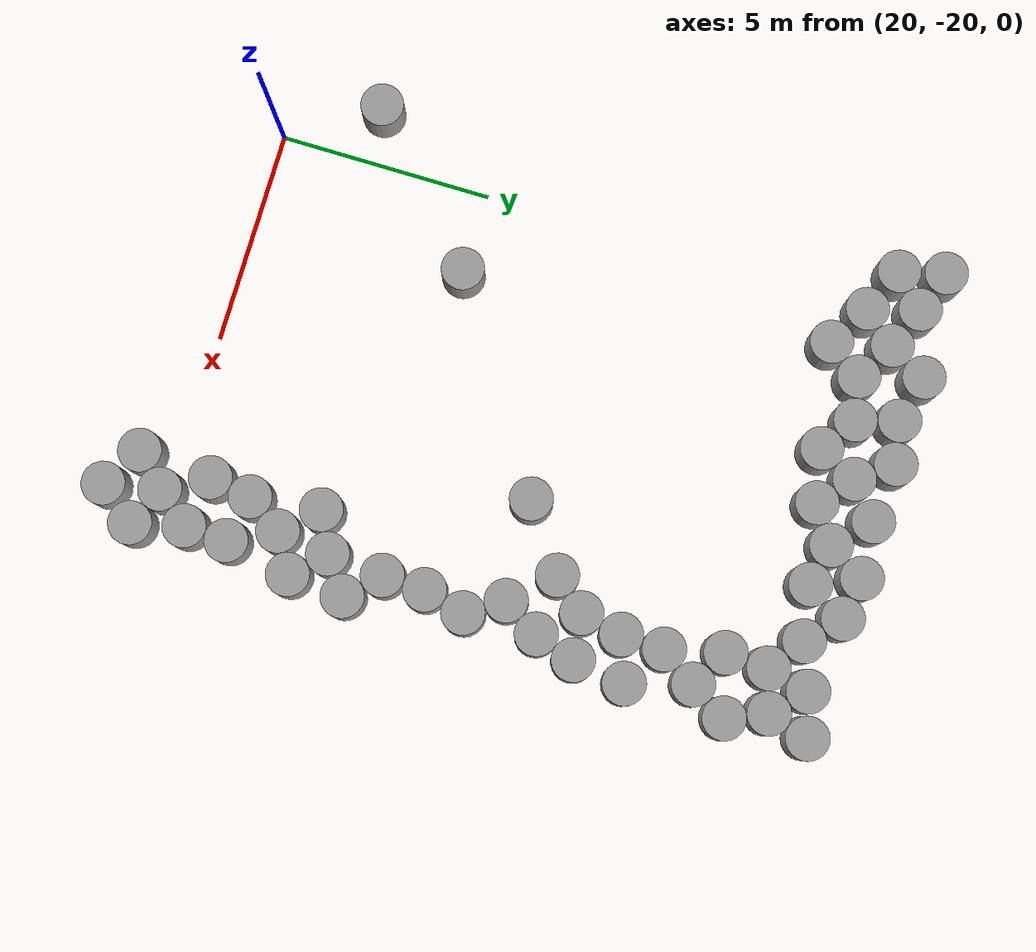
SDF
<sdf version="1.4">
 <world name="default">
  <model name="ground">
   <link name="body">
    <collision name="geom">
     <geometry><plane><normal>0 0 1</normal><size>1 1</size></plane></geometry>
     <surface><friction><ode><mu>100</mu><mu2>50</mu2></ode></friction></surface>
    </collision>
   </link>
   <static>1</static>
  </model>
  <model name="unit_cylinder_clone_5">
   <pose>28.7866 -20.0533 0.499994 3e-06 1e-06 0.262651</pose>
   <link name="link">
    <inertial>
     <mass>1</mass>
     <inertia><ixx>0.145833</ixx><ixy>0</ixy><ixz>0</ixz><iyy>0.145833</iyy><iyz>0</iyz><izz>0.125</izz></inertia>
    </inertial>
    <collision name="collision">
     <geometry><cylinder><radius>0.5</radius><length>1</length></cylinder></geometry>
    </collision>
    <visual name="visual">
     <geometry><cylinder><radius>0.5</radius><length>1</length></cylinder></geometry>
     <material>
      <script><name>Gazebo/Grey</name><uri>file://media/materials/scripts/gazebo.material</uri></script>
     </material>
    </visual>
   </link>
  </model>
  <model name="unit_cylinder_clone_6">
   <pose>29.6989 -20.4656 0.499994 2e-06 1e-06 0.126498</pose>
   <link name="link">
    <inertial>
     <mass>1</mass>
     <inertia><ixx>0.145833</ixx><ixy>0</ixy><ixz>0</ixz><iyy>0.145833</iyy><iyz>0</iyz><izz>0.125</izz></inertia>
    </inertial>
    <collision name="collision">
     <geometry><cylinder><radius>0.5</radius><length>1</length></cylinder></geometry>
    </collision>
    <visual name="visual">
     <geometry><cylinder><radius>0.5</radius><length>1</length></cylinder></geometry>
     <material>
      <script><name>Gazebo/Grey</name><uri>file://media/materials/scripts/gazebo.material</uri></script>
     </material>
    </visual>
   </link>
  </model>
  <model name="unit_cylinder_clone_7">
   <pose>29.4174 -19.2771 0.499996 -2e-06 -2e-06 -0.230884</pose>
   <link name="link">
    <inertial>
     <mass>1</mass>
     <inertia><ixx>0.145833</ixx><ixy>0</ixy><ixz>0</ixz><iyy>0.145833</iyy><iyz>0</iyz><izz>0.125</izz></inertia>
    </inertial>
    <collision name="collision">
     <geometry><cylinder><radius>0.5</radius><length>1</length></cylinder></geometry>
    </collision>
    <visual name="visual">
     <geometry><cylinder><radius>0.5</radius><length>1</length></cylinder></geometry>
     <material>
      <script><name>Gazebo/Grey</name><uri>file://media/materials/scripts/gazebo.material</uri></script>
     </material>
    </visual>
   </link>
  </model>
  <model name="unit_cylinder_clone_8">
   <pose>28.9294 -17.2288 0.499999 2e-06 2e-06 0.123514</pose>
   <link name="link">
    <inertial>
     <mass>1</mass>
     <inertia><ixx>0.145833</ixx><ixy>0</ixy><ixz>0</ixz><iyy>0.145833</iyy><iyz>0</iyz><izz>0.125</izz></inertia>
    </inertial>
    <collision name="collision">
     <geometry><cylinder><radius>0.5</radius><length>1</length></cylinder></geometry>
    </collision>
    <visual name="visual">
     <geometry><cylinder><radius>0.5</radius><length>1</length></cylinder></geometry>
     <material>
      <script><name>Gazebo/Grey</name><uri>file://media/materials/scripts/gazebo.material</uri></script>
     </material>
    </visual>
   </link>
  </model>
  <model name="unit_cylinder_clone_9">
   <pose>29.795 -16.7274 0.499991 1e-06 1e-06 0.099586</pose>
   <link name="link">
    <inertial>
     <mass>1</mass>
     <inertia><ixx>0.145833</ixx><ixy>0</ixy><ixz>0</ixz><iyy>0.145833</iyy><iyz>0</iyz><izz>0.125</izz></inertia>
    </inertial>
    <collision name="collision">
     <geometry><cylinder><radius>0.5</radius><length>1</length></cylinder></geometry>
    </collision>
    <visual name="visual">
     <geometry><cylinder><radius>0.5</radius><length>1</length></cylinder></geometry>
     <material>
      <script><name>Gazebo/Grey</name><uri>file://media/materials/scripts/gazebo.material</uri></script>
     </material>
    </visual>
   </link>
  </model>
  <model name="unit_cylinder_clone_10">
   <pose>29.9089 -15.4151 0.499994 2e-06 2e-06 -0.025586</pose>
   <link name="link">
    <inertial>
     <mass>1</mass>
     <inertia><ixx>0.145833</ixx><ixy>0</ixy><ixz>0</ixz><iyy>0.145833</iyy><iyz>0</iyz><izz>0.125</izz></inertia>
    </inertial>
    <collision name="collision">
     <geometry><cylinder><radius>0.5</radius><length>1</length></cylinder></geometry>
    </collision>
    <visual name="visual">
     <geometry><cylinder><radius>0.5</radius><length>1</length></cylinder></geometry>
     <material>
      <script><name>Gazebo/Grey</name><uri>file://media/materials/scripts/gazebo.material</uri></script>
     </material>
    </visual>
   </link>
  </model>
  <model name="unit_cylinder_clone_11">
   <pose>29.2485 -13.695 0.499992 3e-06 -2e-06 -0.063354</pose>
   <link name="link">
    <inertial>
     <mass>1</mass>
     <inertia><ixx>0.145833</ixx><ixy>0</ixy><ixz>0</ixz><iyy>0.145833</iyy><iyz>0</iyz><izz>0.125</izz></inertia>
    </inertial>
    <collision name="collision">
     <geometry><cylinder><radius>0.5</radius><length>1</length></cylinder></geometry>
    </collision>
    <visual name="visual">
     <geometry><cylinder><radius>0.5</radius><length>1</length></cylinder></geometry>
     <material>
      <script><name>Gazebo/Grey</name><uri>file://media/materials/scripts/gazebo.material</uri></script>
     </material>
    </visual>
   </link>
  </model>
  <model name="unit_cylinder_clone_12">
   <pose>28.962 -11.8819 0.499999 2e-06 2e-06 -0.093312</pose>
   <link name="link">
    <inertial>
     <mass>1</mass>
     <inertia><ixx>0.145833</ixx><ixy>0</ixy><ixz>0</ixz><iyy>0.145833</iyy><iyz>0</iyz><izz>0.125</izz></inertia>
    </inertial>
    <collision name="collision">
     <geometry><cylinder><radius>0.5</radius><length>1</length></cylinder></geometry>
    </collision>
    <visual name="visual">
     <geometry><cylinder><radius>0.5</radius><length>1</length></cylinder></geometry>
     <material>
      <script><name>Gazebo/Grey</name><uri>file://media/materials/scripts/gazebo.material</uri></script>
     </material>
    </visual>
   </link>
  </model>
  <model name="unit_cylinder_clone_13">
   <pose>29.4829 -11.0275 0.499996 -2e-06 -2e-06 0.048416</pose>
   <link name="link">
    <inertial>
     <mass>1</mass>
     <inertia><ixx>0.145833</ixx><ixy>0</ixy><ixz>0</ixz><iyy>0.145833</iyy><iyz>0</iyz><izz>0.125</izz></inertia>
    </inertial>
    <collision name="collision">
     <geometry><cylinder><radius>0.5</radius><length>1</length></cylinder></geometry>
    </collision>
    <visual name="visual">
     <geometry><cylinder><radius>0.5</radius><length>1</length></cylinder></geometry>
     <material>
      <script><name>Gazebo/Grey</name><uri>file://media/materials/scripts/gazebo.material</uri></script>
     </material>
    </visual>
   </link>
  </model>
  <model name="unit_cylinder_clone_14">
   <pose>29.7953 -10.0764 0.5 -1e-06 -1e-06 0.176348</pose>
   <link name="link">
    <inertial>
     <mass>1</mass>
     <inertia><ixx>0.145833</ixx><ixy>0</ixy><ixz>0</ixz><iyy>0.145833</iyy><iyz>0</iyz><izz>0.125</izz></inertia>
    </inertial>
    <collision name="collision">
     <geometry><cylinder><radius>0.5</radius><length>1</length></cylinder></geometry>
    </collision>
    <visual name="visual">
     <geometry><cylinder><radius>0.5</radius><length>1</length></cylinder></geometry>
     <material>
      <script><name>Gazebo/Grey</name><uri>file://media/materials/scripts/gazebo.material</uri></script>
     </material>
    </visual>
   </link>
  </model>
  <model name="unit_cylinder_clone_15">
   <pose>29.5551 -7.37609 0.499995 -2e-06 2e-06 0.059194</pose>
   <link name="link">
    <inertial>
     <mass>1</mass>
     <inertia><ixx>0.145833</ixx><ixy>0</ixy><ixz>0</ixz><iyy>0.145833</iyy><iyz>0</iyz><izz>0.125</izz></inertia>
    </inertial>
    <collision name="collision">
     <geometry><cylinder><radius>0.5</radius><length>1</length></cylinder></geometry>
    </collision>
    <visual name="visual">
     <geometry><cylinder><radius>0.5</radius><length>1</length></cylinder></geometry>
     <material>
      <script><name>Gazebo/Grey</name><uri>file://media/materials/scripts/gazebo.material</uri></script>
     </material>
    </visual>
   </link>
  </model>
  <model name="unit_cylinder_clone_16">
   <pose>30.0751 -6.51711 0.499995 -2e-06 2e-06 0.108755</pose>
   <link name="link">
    <inertial>
     <mass>1</mass>
     <inertia><ixx>0.145833</ixx><ixy>0</ixy><ixz>0</ixz><iyy>0.145833</iyy><iyz>0</iyz><izz>0.125</izz></inertia>
    </inertial>
    <collision name="collision">
     <geometry><cylinder><radius>0.5</radius><length>1</length></cylinder></geometry>
    </collision>
    <visual name="visual">
     <geometry><cylinder><radius>0.5</radius><length>1</length></cylinder></geometry>
     <material>
      <script><name>Gazebo/Grey</name><uri>file://media/materials/scripts/gazebo.material</uri></script>
     </material>
    </visual>
   </link>
  </model>
  <model name="unit_cylinder_clone_17">
   <pose>29.976 -4.63218 0.499998 3e-06 3e-06 0.009053</pose>
   <link name="link">
    <inertial>
     <mass>1</mass>
     <inertia><ixx>0.145833</ixx><ixy>0</ixy><ixz>0</ixz><iyy>0.145833</iyy><iyz>0</iyz><izz>0.125</izz></inertia>
    </inertial>
    <collision name="collision">
     <geometry><cylinder><radius>0.5</radius><length>1</length></cylinder></geometry>
    </collision>
    <visual name="visual">
     <geometry><cylinder><radius>0.5</radius><length>1</length></cylinder></geometry>
     <material>
      <script><name>Gazebo/Grey</name><uri>file://media/materials/scripts/gazebo.material</uri></script>
     </material>
    </visual>
   </link>
  </model>
  <model name="unit_cylinder_clone_18">
   <pose>29.4978 -12.7265 0.5 -1e-06 -1e-06 0.051015</pose>
   <link name="link">
    <inertial>
     <mass>1</mass>
     <inertia><ixx>0.145833</ixx><ixy>0</ixy><ixz>0</ixz><iyy>0.145833</iyy><iyz>0</iyz><izz>0.125</izz></inertia>
    </inertial>
    <collision name="collision">
     <geometry><cylinder><radius>0.5</radius><length>1</length></cylinder></geometry>
    </collision>
    <visual name="visual">
     <geometry><cylinder><radius>0.5</radius><length>1</length></cylinder></geometry>
     <material>
      <script><name>Gazebo/Grey</name><uri>file://media/materials/scripts/gazebo.material</uri></script>
     </material>
    </visual>
   </link>
  </model>
  <model name="unit_cylinder_clone_19">
   <pose>29.4623 -18.2774 0.499994 2e-06 2e-06 -0.124848</pose>
   <link name="link">
    <inertial>
     <mass>1</mass>
     <inertia><ixx>0.145833</ixx><ixy>0</ixy><ixz>0</ixz><iyy>0.145833</iyy><iyz>0</iyz><izz>0.125</izz></inertia>
    </inertial>
    <collision name="collision">
     <geometry><cylinder><radius>0.5</radius><length>1</length></cylinder></geometry>
    </collision>
    <visual name="visual">
     <geometry><cylinder><radius>0.5</radius><length>1</length></cylinder></geometry>
     <material>
      <script><name>Gazebo/Grey</name><uri>file://media/materials/scripts/gazebo.material</uri></script>
     </material>
    </visual>
   </link>
  </model>
  <model name="unit_cylinder_clone_20">
   <pose>29.9729 -8.84857 0.501364 -0.001233 -0.002452 2.3335</pose>
   <link name="link">
    <inertial>
     <mass>1</mass>
     <inertia><ixx>0.145833</ixx><ixy>0</ixy><ixz>0</ixz><iyy>0.145833</iyy><iyz>0</iyz><izz>0.125</izz></inertia>
    </inertial>
    <collision name="collision">
     <geometry><cylinder><radius>0.5</radius><length>1</length></cylinder></geometry>
    </collision>
    <visual name="visual">
     <geometry><cylinder><radius>0.5</radius><length>1</length></cylinder></geometry>
     <material>
      <script><name>Gazebo/Grey</name><uri>file://media/materials/scripts/gazebo.material</uri></script>
     </material>
    </visual>
   </link>
  </model>
  <model name="unit_cylinder_clone_21">
   <pose>28.9761 -4.89449 0.5 -1e-06 -1e-06 -0.038363</pose>
   <link name="link">
    <inertial>
     <mass>1</mass>
     <inertia><ixx>0.145833</ixx><ixy>0</ixy><ixz>0</ixz><iyy>0.145833</iyy><iyz>0</iyz><izz>0.125</izz></inertia>
    </inertial>
    <collision name="collision">
     <geometry><cylinder><radius>0.5</radius><length>1</length></cylinder></geometry>
    </collision>
    <visual name="visual">
     <geometry><cylinder><radius>0.5</radius><length>1</length></cylinder></geometry>
     <material>
      <script><name>Gazebo/Grey</name><uri>file://media/materials/scripts/gazebo.material</uri></script>
     </material>
    </visual>
   </link>
  </model>
  <model name="unit_cylinder_clone_22">
   <pose>27.2072 -4.58034 0.499995 -2e-06 1e-06 0.0063</pose>
   <link name="link">
    <inertial>
     <mass>1</mass>
     <inertia><ixx>0.145833</ixx><ixy>0</ixy><ixz>0</ixz><iyy>0.145833</iyy><iyz>0</iyz><izz>0.125</izz></inertia>
    </inertial>
    <collision name="collision">
     <geometry><cylinder><radius>0.5</radius><length>1</length></cylinder></geometry>
    </collision>
    <visual name="visual">
     <geometry><cylinder><radius>0.5</radius><length>1</length></cylinder></geometry>
     <material>
      <script><name>Gazebo/Grey</name><uri>file://media/materials/scripts/gazebo.material</uri></script>
     </material>
    </visual>
   </link>
  </model>
  <model name="unit_cylinder_clone_23">
   <pose>26.2217 -4.41 0.499995 -2e-06 2e-06 0.037885</pose>
   <link name="link">
    <inertial>
     <mass>1</mass>
     <inertia><ixx>0.145833</ixx><ixy>0</ixy><ixz>0</ixz><iyy>0.145833</iyy><iyz>0</iyz><izz>0.125</izz></inertia>
    </inertial>
    <collision name="collision">
     <geometry><cylinder><radius>0.5</radius><length>1</length></cylinder></geometry>
    </collision>
    <visual name="visual">
     <geometry><cylinder><radius>0.5</radius><length>1</length></cylinder></geometry>
     <material>
      <script><name>Gazebo/Grey</name><uri>file://media/materials/scripts/gazebo.material</uri></script>
     </material>
    </visual>
   </link>
  </model>
  <model name="unit_cylinder_clone_24">
   <pose>24.9179 -4.50219 0.5034 -0.004635 0.005014 -0.097426</pose>
   <link name="link">
    <inertial>
     <mass>1</mass>
     <inertia><ixx>0.145833</ixx><ixy>0</ixy><ixz>0</ixz><iyy>0.145833</iyy><iyz>0</iyz><izz>0.125</izz></inertia>
    </inertial>
    <collision name="collision">
     <geometry><cylinder><radius>0.5</radius><length>1</length></cylinder></geometry>
    </collision>
    <visual name="visual">
     <geometry><cylinder><radius>0.5</radius><length>1</length></cylinder></geometry>
     <material>
      <script><name>Gazebo/Grey</name><uri>file://media/materials/scripts/gazebo.material</uri></script>
     </material>
    </visual>
   </link>
  </model>
  <model name="unit_cylinder_clone_25">
   <pose>23.5263 -4.35552 0.499999 2e-06 2e-06 0.013764</pose>
   <link name="link">
    <inertial>
     <mass>1</mass>
     <inertia><ixx>0.145833</ixx><ixy>0</ixy><ixz>0</ixz><iyy>0.145833</iyy><iyz>0</iyz><izz>0.125</izz></inertia>
    </inertial>
    <collision name="collision">
     <geometry><cylinder><radius>0.5</radius><length>1</length></cylinder></geometry>
    </collision>
    <visual name="visual">
     <geometry><cylinder><radius>0.5</radius><length>1</length></cylinder></geometry>
     <material>
      <script><name>Gazebo/Grey</name><uri>file://media/materials/scripts/gazebo.material</uri></script>
     </material>
    </visual>
   </link>
  </model>
  <model name="unit_cylinder_clone_26">
   <pose>22.5414 -4.53228 0.499992 -4e-06 -2e-06 0.240591</pose>
   <link name="link">
    <inertial>
     <mass>1</mass>
     <inertia><ixx>0.145833</ixx><ixy>0</ixy><ixz>0</ixz><iyy>0.145833</iyy><iyz>0</iyz><izz>0.125</izz></inertia>
    </inertial>
    <collision name="collision">
     <geometry><cylinder><radius>0.5</radius><length>1</length></cylinder></geometry>
    </collision>
    <visual name="visual">
     <geometry><cylinder><radius>0.5</radius><length>1</length></cylinder></geometry>
     <material>
      <script><name>Gazebo/Grey</name><uri>file://media/materials/scripts/gazebo.material</uri></script>
     </material>
    </visual>
   </link>
  </model>
  <model name="unit_cylinder_clone_27">
   <pose>21.43 -4.26292 0.50074 -0.001458 -0.000297 0.034988</pose>
   <link name="link">
    <inertial>
     <mass>1</mass>
     <inertia><ixx>0.145833</ixx><ixy>0</ixy><ixz>0</ixz><iyy>0.145833</iyy><iyz>0</iyz><izz>0.125</izz></inertia>
    </inertial>
    <collision name="collision">
     <geometry><cylinder><radius>0.5</radius><length>1</length></cylinder></geometry>
    </collision>
    <visual name="visual">
     <geometry><cylinder><radius>0.5</radius><length>1</length></cylinder></geometry>
     <material>
      <script><name>Gazebo/Grey</name><uri>file://media/materials/scripts/gazebo.material</uri></script>
     </material>
    </visual>
   </link>
  </model>
  <model name="unit_cylinder_clone_28">
   <pose>19.9431 -4.7481 0.5 0 0 -0.131843</pose>
   <link name="link">
    <inertial>
     <mass>1</mass>
     <inertia><ixx>0.145833</ixx><ixy>0</ixy><ixz>0</ixz><iyy>0.145833</iyy><iyz>0</iyz><izz>0.125</izz></inertia>
    </inertial>
    <collision name="collision">
     <geometry><cylinder><radius>0.5</radius><length>1</length></cylinder></geometry>
    </collision>
    <visual name="visual">
     <geometry><cylinder><radius>0.5</radius><length>1</length></cylinder></geometry>
     <material>
      <script><name>Gazebo/Grey</name><uri>file://media/materials/scripts/gazebo.material</uri></script>
     </material>
    </visual>
   </link>
  </model>
  <model name="unit_cylinder_clone_29">
   <pose>18.9579 -4.39646 0.499994 2e-06 1e-06 0.172267</pose>
   <link name="link">
    <inertial>
     <mass>1</mass>
     <inertia><ixx>0.145833</ixx><ixy>0</ixy><ixz>0</ixz><iyy>0.145833</iyy><iyz>0</iyz><izz>0.125</izz></inertia>
    </inertial>
    <collision name="collision">
     <geometry><cylinder><radius>0.5</radius><length>1</length></cylinder></geometry>
    </collision>
    <visual name="visual">
     <geometry><cylinder><radius>0.5</radius><length>1</length></cylinder></geometry>
     <material>
      <script><name>Gazebo/Grey</name><uri>file://media/materials/scripts/gazebo.material</uri></script>
     </material>
    </visual>
   </link>
  </model>
  <model name="unit_cylinder_clone_67">
   <pose>18.8346 -17.902 0.499995 2e-06 -1e-06 -5e-06</pose>
   <link name="link">
    <inertial>
     <mass>1</mass>
     <inertia><ixx>0.145833</ixx><ixy>0</ixy><ixz>0</ixz><iyy>0.145833</iyy><iyz>0</iyz><izz>0.125</izz></inertia>
    </inertial>
    <collision name="collision">
     <geometry><cylinder><radius>0.5</radius><length>1</length></cylinder></geometry>
    </collision>
    <visual name="visual">
     <geometry><cylinder><radius>0.5</radius><length>1</length></cylinder></geometry>
     <material>
      <script><name>Gazebo/Grey</name><uri>file://media/materials/scripts/gazebo.material</uri></script>
     </material>
    </visual>
   </link>
  </model>
  <model name="unit_cylinder_clone_68">
   <pose>22 -15 0.499995 2e-06 -1e-06 -3e-06</pose>
   <link name="link">
    <inertial>
     <mass>1</mass>
     <inertia><ixx>0.145833</ixx><ixy>0</ixy><ixz>0</ixz><iyy>0.145833</iyy><iyz>0</iyz><izz>0.125</izz></inertia>
    </inertial>
    <collision name="collision">
     <geometry><cylinder><radius>0.5</radius><length>1</length></cylinder></geometry>
    </collision>
    <visual name="visual">
     <geometry><cylinder><radius>0.5</radius><length>1</length></cylinder></geometry>
     <material>
      <script><name>Gazebo/Grey</name><uri>file://media/materials/scripts/gazebo.material</uri></script>
     </material>
    </visual>
   </link>
  </model>
  <model name="unit_cylinder_4_clone">
   <pose>19.2185 -5.43726 0.499999 3e-06 3e-06 0.005609</pose>
   <link name="link">
    <inertial>
     <mass>1</mass>
     <inertia><ixx>0.145833</ixx><ixy>0</ixy><ixz>0</ixz><iyy>0.145833</iyy><iyz>0</iyz><izz>0.125</izz></inertia>
    </inertial>
    <collision name="collision">
     <geometry><cylinder><radius>0.5</radius><length>1</length></cylinder></geometry>
    </collision>
    <visual name="visual">
     <geometry><cylinder><radius>0.5</radius><length>1</length></cylinder></geometry>
     <material>
      <script><name>Gazebo/Grey</name><uri>file://media/materials/scripts/gazebo.material</uri></script>
     </material>
    </visual>
   </link>
  </model>
  <model name="unit_cylinder_4_clone_1">
   <pose>20.9296 -5.14058 0.500885 -0.001648 -0.00068 -0.109849</pose>
   <link name="link">
    <inertial>
     <mass>1</mass>
     <inertia><ixx>0.145833</ixx><ixy>0</ixy><ixz>0</ixz><iyy>0.145833</iyy><iyz>0</iyz><izz>0.125</izz></inertia>
    </inertial>
    <collision name="collision">
     <geometry><cylinder><radius>0.5</radius><length>1</length></cylinder></geometry>
    </collision>
    <visual name="visual">
     <geometry><cylinder><radius>0.5</radius><length>1</length></cylinder></geometry>
     <material>
      <script><name>Gazebo/Grey</name><uri>file://media/materials/scripts/gazebo.material</uri></script>
     </material>
    </visual>
   </link>
  </model>
  <model name="unit_cylinder_4_clone_2">
   <pose>21.8309 -5.6823 0.499994 2e-06 2e-06 -0.140384</pose>
   <link name="link">
    <inertial>
     <mass>1</mass>
     <inertia><ixx>0.145833</ixx><ixy>0</ixy><ixz>0</ixz><iyy>0.145833</iyy><iyz>0</iyz><izz>0.125</izz></inertia>
    </inertial>
    <collision name="collision">
     <geometry><cylinder><radius>0.5</radius><length>1</length></cylinder></geometry>
    </collision>
    <visual name="visual">
     <geometry><cylinder><radius>0.5</radius><length>1</length></cylinder></geometry>
     <material>
      <script><name>Gazebo/Grey</name><uri>file://media/materials/scripts/gazebo.material</uri></script>
     </material>
    </visual>
   </link>
  </model>
  <model name="unit_cylinder_4_clone_3">
   <pose>22.8146 -5.49446 0.499995 -2e-06 1e-06 -0.230063</pose>
   <link name="link">
    <inertial>
     <mass>1</mass>
     <inertia><ixx>0.145833</ixx><ixy>0</ixy><ixz>0</ixz><iyy>0.145833</iyy><iyz>0</iyz><izz>0.125</izz></inertia>
    </inertial>
    <collision name="collision">
     <geometry><cylinder><radius>0.5</radius><length>1</length></cylinder></geometry>
    </collision>
    <visual name="visual">
     <geometry><cylinder><radius>0.5</radius><length>1</length></cylinder></geometry>
     <material>
      <script><name>Gazebo/Grey</name><uri>file://media/materials/scripts/gazebo.material</uri></script>
     </material>
    </visual>
   </link>
  </model>
  <model name="unit_cylinder_4_clone_4">
   <pose>24.1157 -5.16391 0.499999 2e-06 2e-06 0.053416</pose>
   <link name="link">
    <inertial>
     <mass>1</mass>
     <inertia><ixx>0.145833</ixx><ixy>0</ixy><ixz>0</ixz><iyy>0.145833</iyy><iyz>0</iyz><izz>0.125</izz></inertia>
    </inertial>
    <collision name="collision">
     <geometry><cylinder><radius>0.5</radius><length>1</length></cylinder></geometry>
    </collision>
    <visual name="visual">
     <geometry><cylinder><radius>0.5</radius><length>1</length></cylinder></geometry>
     <material>
      <script><name>Gazebo/Grey</name><uri>file://media/materials/scripts/gazebo.material</uri></script>
     </material>
    </visual>
   </link>
  </model>
  <model name="unit_cylinder_4_clone_5">
   <pose>25.6998 -5.26524 0.499995 2e-06 -1e-06 0.038792</pose>
   <link name="link">
    <inertial>
     <mass>1</mass>
     <inertia><ixx>0.145833</ixx><ixy>0</ixy><ixz>0</ixz><iyy>0.145833</iyy><iyz>0</iyz><izz>0.125</izz></inertia>
    </inertial>
    <collision name="collision">
     <geometry><cylinder><radius>0.5</radius><length>1</length></cylinder></geometry>
    </collision>
    <visual name="visual">
     <geometry><cylinder><radius>0.5</radius><length>1</length></cylinder></geometry>
     <material>
      <script><name>Gazebo/Grey</name><uri>file://media/materials/scripts/gazebo.material</uri></script>
     </material>
    </visual>
   </link>
  </model>
  <model name="unit_cylinder_4_clone_6">
   <pose>26.6781 -5.4763 0.499992 -3e-06 -3e-06 0.009235</pose>
   <link name="link">
    <inertial>
     <mass>1</mass>
     <inertia><ixx>0.145833</ixx><ixy>0</ixy><ixz>0</ixz><iyy>0.145833</iyy><iyz>0</iyz><izz>0.125</izz></inertia>
    </inertial>
    <collision name="collision">
     <geometry><cylinder><radius>0.5</radius><length>1</length></cylinder></geometry>
    </collision>
    <visual name="visual">
     <geometry><cylinder><radius>0.5</radius><length>1</length></cylinder></geometry>
     <material>
      <script><name>Gazebo/Grey</name><uri>file://media/materials/scripts/gazebo.material</uri></script>
     </material>
    </visual>
   </link>
  </model>
  <model name="unit_cylinder_4_clone_7">
   <pose>27.9305 -5.27341 0.499995 3e-06 -2e-06 -0.11086</pose>
   <link name="link">
    <inertial>
     <mass>1</mass>
     <inertia><ixx>0.145833</ixx><ixy>0</ixy><ixz>0</ixz><iyy>0.145833</iyy><iyz>0</iyz><izz>0.125</izz></inertia>
    </inertial>
    <collision name="collision">
     <geometry><cylinder><radius>0.5</radius><length>1</length></cylinder></geometry>
    </collision>
    <visual name="visual">
     <geometry><cylinder><radius>0.5</radius><length>1</length></cylinder></geometry>
     <material>
      <script><name>Gazebo/Grey</name><uri>file://media/materials/scripts/gazebo.material</uri></script>
     </material>
    </visual>
   </link>
  </model>
  <model name="unit_cylinder_4_clone_8">
   <pose>28.7313 -5.87235 0.499995 -2e-06 2e-06 0.111721</pose>
   <link name="link">
    <inertial>
     <mass>1</mass>
     <inertia><ixx>0.145833</ixx><ixy>0</ixy><ixz>0</ixz><iyy>0.145833</iyy><iyz>0</iyz><izz>0.125</izz></inertia>
    </inertial>
    <collision name="collision">
     <geometry><cylinder><radius>0.5</radius><length>1</length></cylinder></geometry>
    </collision>
    <visual name="visual">
     <geometry><cylinder><radius>0.5</radius><length>1</length></cylinder></geometry>
     <material>
      <script><name>Gazebo/Grey</name><uri>file://media/materials/scripts/gazebo.material</uri></script>
     </material>
    </visual>
   </link>
  </model>
  <model name="unit_cylinder_4_clone_9">
   <pose>29.6916 -5.59319 0.499995 -2e-06 2e-06 0.073265</pose>
   <link name="link">
    <inertial>
     <mass>1</mass>
     <inertia><ixx>0.145833</ixx><ixy>0</ixy><ixz>0</ixz><iyy>0.145833</iyy><iyz>0</iyz><izz>0.125</izz></inertia>
    </inertial>
    <collision name="collision">
     <geometry><cylinder><radius>0.5</radius><length>1</length></cylinder></geometry>
    </collision>
    <visual name="visual">
     <geometry><cylinder><radius>0.5</radius><length>1</length></cylinder></geometry>
     <material>
      <script><name>Gazebo/Grey</name><uri>file://media/materials/scripts/gazebo.material</uri></script>
     </material>
    </visual>
   </link>
  </model>
  <model name="unit_cylinder_4_clone_10">
   <pose>28.6775 -6.87456 0.499995 -3e-06 1e-06 -0.379782</pose>
   <link name="link">
    <inertial>
     <mass>1</mass>
     <inertia><ixx>0.145833</ixx><ixy>0</ixy><ixz>0</ixz><iyy>0.145833</iyy><iyz>0</iyz><izz>0.125</izz></inertia>
    </inertial>
    <collision name="collision">
     <geometry><cylinder><radius>0.5</radius><length>1</length></cylinder></geometry>
    </collision>
    <visual name="visual">
     <geometry><cylinder><radius>0.5</radius><length>1</length></cylinder></geometry>
     <material>
      <script><name>Gazebo/Grey</name><uri>file://media/materials/scripts/gazebo.material</uri></script>
     </material>
    </visual>
   </link>
  </model>
  <model name="unit_cylinder_4_clone_11">
   <pose>28.9953 -8.2047 0.499994 1e-06 3e-06 -0.327213</pose>
   <link name="link">
    <inertial>
     <mass>1</mass>
     <inertia><ixx>0.145833</ixx><ixy>0</ixy><ixz>0</ixz><iyy>0.145833</iyy><iyz>0</iyz><izz>0.125</izz></inertia>
    </inertial>
    <collision name="collision">
     <geometry><cylinder><radius>0.5</radius><length>1</length></cylinder></geometry>
    </collision>
    <visual name="visual">
     <geometry><cylinder><radius>0.5</radius><length>1</length></cylinder></geometry>
     <material>
      <script><name>Gazebo/Grey</name><uri>file://media/materials/scripts/gazebo.material</uri></script>
     </material>
    </visual>
   </link>
  </model>
  <model name="unit_cylinder_4_clone_12">
   <pose>28.9491 -9.21094 0.499992 -3e-06 -4e-06 -0.159496</pose>
   <link name="link">
    <inertial>
     <mass>1</mass>
     <inertia><ixx>0.145833</ixx><ixy>0</ixy><ixz>0</ixz><iyy>0.145833</iyy><iyz>0</iyz><izz>0.125</izz></inertia>
    </inertial>
    <collision name="collision">
     <geometry><cylinder><radius>0.5</radius><length>1</length></cylinder></geometry>
    </collision>
    <visual name="visual">
     <geometry><cylinder><radius>0.5</radius><length>1</length></cylinder></geometry>
     <material>
      <script><name>Gazebo/Grey</name><uri>file://media/materials/scripts/gazebo.material</uri></script>
     </material>
    </visual>
   </link>
  </model>
  <model name="unit_cylinder_4_clone_13">
   <pose>29.21 -14.6942 0.499892 0 0 -0.00099</pose>
   <link name="link">
    <inertial>
     <mass>1</mass>
     <inertia><ixx>0.145833</ixx><ixy>0</ixy><ixz>0</ixz><iyy>0.145833</iyy><iyz>0</iyz><izz>0.125</izz></inertia>
    </inertial>
    <collision name="collision">
     <geometry><cylinder><radius>0.5</radius><length>1</length></cylinder></geometry>
    </collision>
    <visual name="visual">
     <geometry><cylinder><radius>0.5</radius><length>1</length></cylinder></geometry>
     <material>
      <script><name>Gazebo/Grey</name><uri>file://media/materials/scripts/gazebo.material</uri></script>
     </material>
    </visual>
   </link>
  </model>
  <model name="unit_cylinder_4_clone_14">
   <pose>29.1006 -16.0075 0.499992 -3e-06 -4e-06 0.043616</pose>
   <link name="link">
    <inertial>
     <mass>1</mass>
     <inertia><ixx>0.145833</ixx><ixy>0</ixy><ixz>0</ixz><iyy>0.145833</iyy><iyz>0</iyz><izz>0.125</izz></inertia>
    </inertial>
    <collision name="collision">
     <geometry><cylinder><radius>0.5</radius><length>1</length></cylinder></geometry>
    </collision>
    <visual name="visual">
     <geometry><cylinder><radius>0.5</radius><length>1</length></cylinder></geometry>
     <material>
      <script><name>Gazebo/Grey</name><uri>file://media/materials/scripts/gazebo.material</uri></script>
     </material>
    </visual>
   </link>
  </model>
  <model name="unit_cylinder_4_clone_15">
   <pose>26.616 -11.9966 0.499995 -3e-06 2e-06 1.7e-05</pose>
   <link name="link">
    <inertial>
     <mass>1</mass>
     <inertia><ixx>0.145833</ixx><ixy>0</ixy><ixz>0</ixz><iyy>0.145833</iyy><iyz>0</iyz><izz>0.125</izz></inertia>
    </inertial>
    <collision name="collision">
     <geometry><cylinder><radius>0.5</radius><length>1</length></cylinder></geometry>
    </collision>
    <visual name="visual">
     <geometry><cylinder><radius>0.5</radius><length>1</length></cylinder></geometry>
     <material>
      <script><name>Gazebo/Grey</name><uri>file://media/materials/scripts/gazebo.material</uri></script>
     </material>
    </visual>
   </link>
  </model>
  <model name="unit_cylinder_4_clone_17">
   <pose>29.0203 -21.3164 0.499992 -4e-06 -2e-06 0.363936</pose>
   <link name="link">
    <inertial>
     <mass>1</mass>
     <inertia><ixx>0.145833</ixx><ixy>0</ixy><ixz>0</ixz><iyy>0.145833</iyy><iyz>0</iyz><izz>0.125</izz></inertia>
    </inertial>
    <collision name="collision">
     <geometry><cylinder><radius>0.5</radius><length>1</length></cylinder></geometry>
    </collision>
    <visual name="visual">
     <geometry><cylinder><radius>0.5</radius><length>1</length></cylinder></geometry>
     <material>
      <script><name>Gazebo/Grey</name><uri>file://media/materials/scripts/gazebo.material</uri></script>
     </material>
    </visual>
   </link>
  </model>
  <model name="unit_cylinder_4_clone_18">
   <pose>28.075 -20.7625 0.499996 -2e-06 -2e-06 -0.09185</pose>
   <link name="link">
    <inertial>
     <mass>1</mass>
     <inertia><ixx>0.145833</ixx><ixy>0</ixy><ixz>0</ixz><iyy>0.145833</iyy><iyz>0</iyz><izz>0.125</izz></inertia>
    </inertial>
    <collision name="collision">
     <geometry><cylinder><radius>0.5</radius><length>1</length></cylinder></geometry>
    </collision>
    <visual name="visual">
     <geometry><cylinder><radius>0.5</radius><length>1</length></cylinder></geometry>
     <material>
      <script><name>Gazebo/Grey</name><uri>file://media/materials/scripts/gazebo.material</uri></script>
     </material>
    </visual>
   </link>
  </model>
  <model name="unit_cylinder_4_clone_59">
   <pose>20.2646 -5.90312 0.499995 -2e-06 1e-06 -0.000116</pose>
   <link name="link">
    <inertial>
     <mass>1</mass>
     <inertia><ixx>0.145833</ixx><ixy>0</ixy><ixz>0</ixz><iyy>0.145833</iyy><iyz>0</iyz><izz>0.125</izz></inertia>
    </inertial>
    <collision name="collision">
     <geometry><cylinder><radius>0.5</radius><length>1</length></cylinder></geometry>
    </collision>
    <visual name="visual">
     <geometry><cylinder><radius>0.5</radius><length>1</length></cylinder></geometry>
     <material>
      <script><name>Gazebo/Grey</name><uri>file://media/materials/scripts/gazebo.material</uri></script>
     </material>
    </visual>
   </link>
  </model>
  <model name="unit_cylinder_4_clone_66">
   <pose>23.6471 -6.04845 0.499995 2e-06 -1e-06 -0.071148</pose>
   <link name="link">
    <inertial>
     <mass>1</mass>
     <inertia><ixx>0.145833</ixx><ixy>0</ixy><ixz>0</ixz><iyy>0.145833</iyy><iyz>0</iyz><izz>0.125</izz></inertia>
    </inertial>
    <collision name="collision">
     <geometry><cylinder><radius>0.5</radius><length>1</length></cylinder></geometry>
    </collision>
    <visual name="visual">
     <geometry><cylinder><radius>0.5</radius><length>1</length></cylinder></geometry>
     <material>
      <script><name>Gazebo/Grey</name><uri>file://media/materials/scripts/gazebo.material</uri></script>
     </material>
    </visual>
   </link>
  </model>
  <model name="unit_cylinder_4_clone_67">
   <pose>24.869 -5.82185 0.499992 -3e-06 -3e-06 -0.118763</pose>
   <link name="link">
    <inertial>
     <mass>1</mass>
     <inertia><ixx>0.145833</ixx><ixy>0</ixy><ixz>0</ixz><iyy>0.145833</iyy><iyz>0</iyz><izz>0.125</izz></inertia>
    </inertial>
    <collision name="collision">
     <geometry><cylinder><radius>0.5</radius><length>1</length></cylinder></geometry>
    </collision>
    <visual name="visual">
     <geometry><cylinder><radius>0.5</radius><length>1</length></cylinder></geometry>
     <material>
      <script><name>Gazebo/Grey</name><uri>file://media/materials/scripts/gazebo.material</uri></script>
     </material>
    </visual>
   </link>
  </model>
  <model name="unit_cylinder_4_clone_68">
   <pose>21.2302 -6.48202 0.499992 -3e-06 -4e-06 -0.001928</pose>
   <link name="link">
    <inertial>
     <mass>1</mass>
     <inertia><ixx>0.145833</ixx><ixy>0</ixy><ixz>0</ixz><iyy>0.145833</iyy><iyz>0</iyz><izz>0.125</izz></inertia>
    </inertial>
    <collision name="collision">
     <geometry><cylinder><radius>0.5</radius><length>1</length></cylinder></geometry>
    </collision>
    <visual name="visual">
     <geometry><cylinder><radius>0.5</radius><length>1</length></cylinder></geometry>
     <material>
      <script><name>Gazebo/Grey</name><uri>file://media/materials/scripts/gazebo.material</uri></script>
     </material>
    </visual>
   </link>
  </model>
  <model name="unit_cylinder_4_clone_69">
   <pose>28.3706 -18.0585 0.499992 -3e-06 -4e-06 -0.005295</pose>
   <link name="link">
    <inertial>
     <mass>1</mass>
     <inertia><ixx>0.145833</ixx><ixy>0</ixy><ixz>0</ixz><iyy>0.145833</iyy><iyz>0</iyz><izz>0.125</izz></inertia>
    </inertial>
    <collision name="collision">
     <geometry><cylinder><radius>0.5</radius><length>1</length></cylinder></geometry>
    </collision>
    <visual name="visual">
     <geometry><cylinder><radius>0.5</radius><length>1</length></cylinder></geometry>
     <material>
      <script><name>Gazebo/Grey</name><uri>file://media/materials/scripts/gazebo.material</uri></script>
     </material>
    </visual>
   </link>
  </model>
  <model name="unit_cylinder_4_clone_70">
   <pose>28.2118 -19.0458 0.499998 3e-06 -2e-06 -0.016155</pose>
   <link name="link">
    <inertial>
     <mass>1</mass>
     <inertia><ixx>0.145833</ixx><ixy>0</ixy><ixz>0</ixz><iyy>0.145833</iyy><iyz>0</iyz><izz>0.125</izz></inertia>
    </inertial>
    <collision name="collision">
     <geometry><cylinder><radius>0.5</radius><length>1</length></cylinder></geometry>
    </collision>
    <visual name="visual">
     <geometry><cylinder><radius>0.5</radius><length>1</length></cylinder></geometry>
     <material>
      <script><name>Gazebo/Grey</name><uri>file://media/materials/scripts/gazebo.material</uri></script>
     </material>
    </visual>
   </link>
  </model>
  <model name="unit_cylinder_4_clone_71">
   <pose>28.1951 -16.4416 0.500471 -0.000905 -0.000282 -0.021846</pose>
   <link name="link">
    <inertial>
     <mass>1</mass>
     <inertia><ixx>0.145833</ixx><ixy>0</ixy><ixz>0</ixz><iyy>0.145833</iyy><iyz>0</iyz><izz>0.125</izz></inertia>
    </inertial>
    <collision name="collision">
     <geometry><cylinder><radius>0.5</radius><length>1</length></cylinder></geometry>
    </collision>
    <visual name="visual">
     <geometry><cylinder><radius>0.5</radius><length>1</length></cylinder></geometry>
     <material>
      <script><name>Gazebo/Grey</name><uri>file://media/materials/scripts/gazebo.material</uri></script>
     </material>
    </visual>
   </link>
  </model>
  <model name="unit_cylinder_4_clone_72">
   <pose>28.7455 -10.1913 0.499999 2e-06 2e-06 -0.033484</pose>
   <link name="link">
    <inertial>
     <mass>1</mass>
     <inertia><ixx>0.145833</ixx><ixy>0</ixy><ixz>0</ixz><iyy>0.145833</iyy><iyz>0</iyz><izz>0.125</izz></inertia>
    </inertial>
    <collision name="collision">
     <geometry><cylinder><radius>0.5</radius><length>1</length></cylinder></geometry>
    </collision>
    <visual name="visual">
     <geometry><cylinder><radius>0.5</radius><length>1</length></cylinder></geometry>
     <material>
      <script><name>Gazebo/Grey</name><uri>file://media/materials/scripts/gazebo.material</uri></script>
     </material>
    </visual>
   </link>
  </model>
  <model name="unit_cylinder_4_clone_73">
   <pose>28.0912 -10.9477 0.5 -1e-06 -1e-06 -0.043533</pose>
   <link name="link">
    <inertial>
     <mass>1</mass>
     <inertia><ixx>0.145833</ixx><ixy>0</ixy><ixz>0</ixz><iyy>0.145833</iyy><iyz>0</iyz><izz>0.125</izz></inertia>
    </inertial>
    <collision name="collision">
     <geometry><cylinder><radius>0.5</radius><length>1</length></cylinder></geometry>
    </collision>
    <visual name="visual">
     <geometry><cylinder><radius>0.5</radius><length>1</length></cylinder></geometry>
     <material>
      <script><name>Gazebo/Grey</name><uri>file://media/materials/scripts/gazebo.material</uri></script>
     </material>
    </visual>
   </link>
  </model>
 </world>
</sdf>
